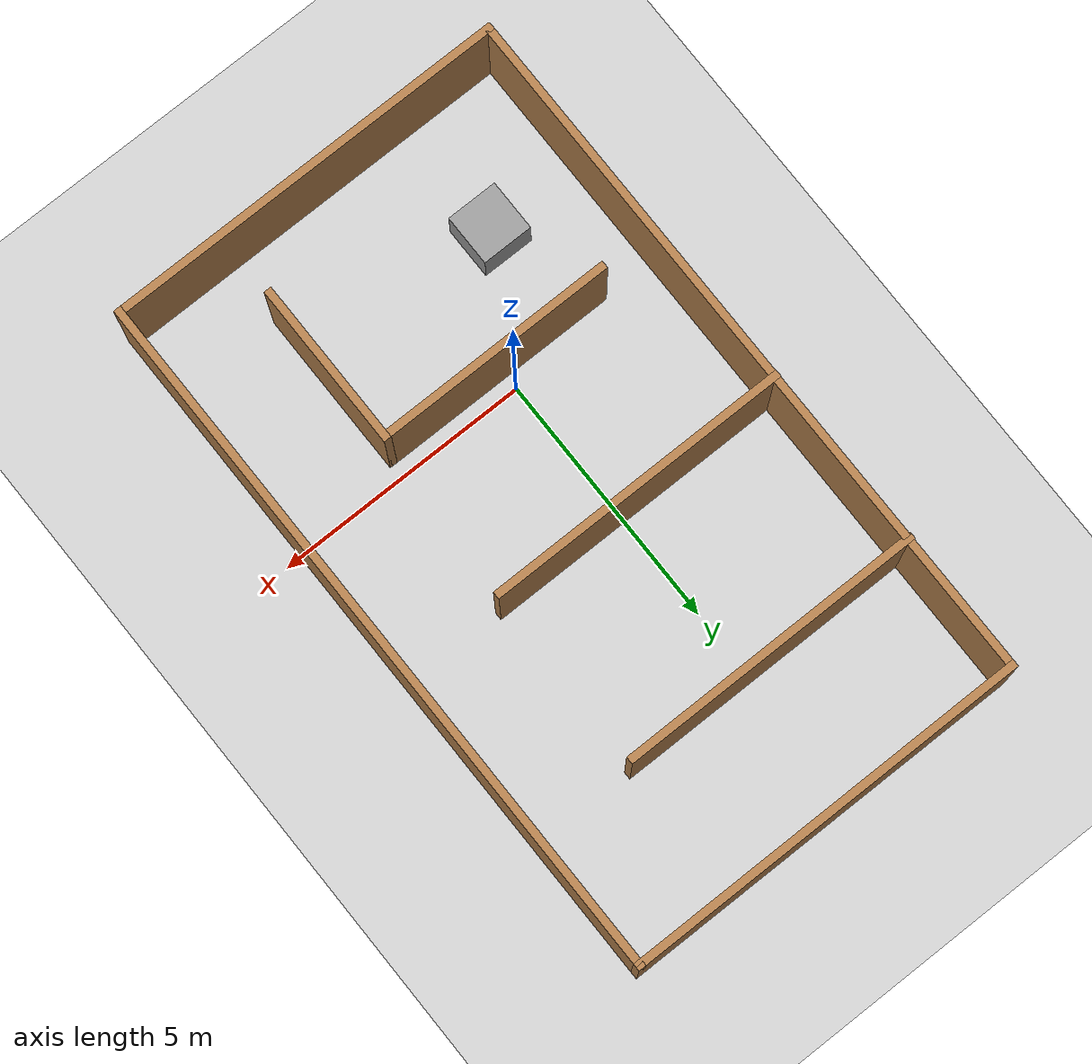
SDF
<sdf version="1.7">
 <world name="default">
  <light name="sun" type="directional">
   <pose>0 0 10 0 -0 0</pose>
   <diffuse>0.8 0.8 0.8 1</diffuse>
   <specular>0.2 0.2 0.2 1</specular>
   <attenuation>
    <range>1000</range>
    <constant>0.9</constant>
    <linear>0.01</linear>
    <quadratic>0.001</quadratic>
   </attenuation>
   <direction>-0.5 0.1 -0.9</direction>
   <spot><inner_angle>0</inner_angle><outer_angle>0</outer_angle><falloff>0</falloff></spot>
  </light>
  <model name="ground_plane">
   <static>1</static>
   <link name="link">
    <collision name="collision">
     <geometry><plane><normal>0 0 1</normal><size>100 100</size></plane></geometry>
     <surface>
      <contact><collide_bitmask>65535</collide_bitmask></contact>
      <friction><ode><mu>100</mu><mu2>50</mu2></ode></friction>
     </surface>
    </collision>
    <visual name="visual">
     <cast_shadows>0</cast_shadows>
     <geometry><plane><normal>0 0 1</normal><size>100 100</size></plane></geometry>
     <material>
      <script><uri>file://media/materials/scripts/gazebo.material</uri><name>Gazebo/Grey</name></script>
     </material>
    </visual>
   </link>
  </model>
  <gravity>0 0 -9.8</gravity>
  <magnetic_field>6e-06 2.3e-05 -4.2e-05</magnetic_field>
  <atmosphere type="adiabatic"/>
  <physics type="ode">
   <max_step_size>0.001</max_step_size>
   <real_time_factor>1</real_time_factor>
   <real_time_update_rate>1000</real_time_update_rate>
  </physics>
  <scene><ambient>0.4 0.4 0.4 1</ambient><background>0.7 0.7 0.7 1</background><shadows>1</shadows></scene>
  <spherical_coordinates>
   <surface_model>EARTH_WGS84</surface_model>
   <latitude_deg>0</latitude_deg>
   <longitude_deg>0</longitude_deg>
   <elevation>0</elevation>
   <heading_deg>0</heading_deg>
  </spherical_coordinates>
  <model name="map1">
   <pose>0.693608 2.165 0 0 -0 0</pose>
   <link name="Wall_0">
    <collision name="Wall_0_Collision">
     <geometry><box><size>8 0.15 2.5</size></box></geometry>
     <pose>0 0 1.25 0 -0 0</pose>
    </collision>
    <visual name="Wall_0_Visual">
     <pose>0 0 1.25 0 -0 0</pose>
     <geometry><box><size>8 0.15 2.5</size></box></geometry>
     <material>
      <script><uri>file://media/materials/scripts/gazebo.material</uri><name>Gazebo/Wood</name></script>
      <ambient>1 1 1 1</ambient>
     </material>
     <meta><layer>0</layer></meta>
    </visual>
    <pose>0.011392 -6.925 0 0 -0 0</pose>
   </link>
   <link name="Wall_1">
    <collision name="Wall_1_Collision">
     <geometry><box><size>14 0.15 2.5</size></box></geometry>
     <pose>0 0 1.25 0 -0 0</pose>
    </collision>
    <visual name="Wall_1_Visual">
     <pose>0 0 1.25 0 -0 0</pose>
     <geometry><box><size>14 0.15 2.5</size></box></geometry>
     <material>
      <script><uri>file://media/materials/scripts/gazebo.material</uri><name>Gazebo/Wood</name></script>
      <ambient>1 1 1 1</ambient>
     </material>
     <meta><layer>0</layer></meta>
    </visual>
    <pose>3.93639 0 0 0 -0 1.5708</pose>
   </link>
   <link name="Wall_10">
    <collision name="Wall_10_Collision">
     <geometry><box><size>4.75 0.15 2.5</size></box></geometry>
     <pose>0 0 1.25 0 -0 0</pose>
    </collision>
    <visual name="Wall_10_Visual">
     <pose>0 0 1.25 0 -0 0</pose>
     <geometry><box><size>4.75 0.15 2.5</size></box></geometry>
     <material>
      <script><uri>file://media/materials/scripts/gazebo.material</uri><name>Gazebo/Wood</name></script>
      <ambient>1 1 1 1</ambient>
     </material>
     <meta><layer>0</layer></meta>
    </visual>
    <pose>-0.525299 -2.51828 0 0 -0 0</pose>
   </link>
   <link name="Wall_11">
    <collision name="Wall_11_Collision">
     <geometry><box><size>3.25 0.15 2.5</size></box></geometry>
     <pose>0 0 1.25 0 -0 0</pose>
    </collision>
    <visual name="Wall_11_Visual">
     <pose>0 0 1.25 0 -0 0</pose>
     <geometry><box><size>3.25 0.15 2.5</size></box></geometry>
     <material>
      <script><uri>file://media/materials/scripts/gazebo.material</uri><name>Gazebo/Wood</name></script>
      <ambient>1 1 1 1</ambient>
     </material>
     <meta><layer>0</layer></meta>
    </visual>
    <pose>1.7747 -4.06828 0 0 -0 -1.5708</pose>
   </link>
   <link name="Wall_3">
    <collision name="Wall_3_Collision">
     <geometry><box><size>14 0.15 2.5</size></box></geometry>
     <pose>0 0 1.25 0 -0 0</pose>
    </collision>
    <visual name="Wall_3_Visual">
     <pose>0 0 1.25 0 -0 0</pose>
     <geometry><box><size>14 0.15 2.5</size></box></geometry>
     <material>
      <script><uri>file://media/materials/scripts/gazebo.material</uri><name>Gazebo/Wood</name></script>
      <ambient>1 1 1 1</ambient>
     </material>
     <meta><layer>0</layer></meta>
    </visual>
    <pose>-3.91361 0 0 0 -0 1.5708</pose>
   </link>
   <link name="Wall_4">
    <collision name="Wall_4_Collision">
     <geometry><box><size>8 0.15 2.5</size></box></geometry>
     <pose>0 0 1.25 0 -0 0</pose>
    </collision>
    <visual name="Wall_4_Visual">
     <pose>0 0 1.25 0 -0 0</pose>
     <geometry><box><size>8 0.15 2.5</size></box></geometry>
     <material>
      <script><uri>file://media/materials/scripts/gazebo.material</uri><name>Gazebo/Wood</name></script>
      <ambient>1 1 1 1</ambient>
     </material>
     <meta><layer>0</layer></meta>
    </visual>
    <pose>0.011392 6.925 0 0 -0 0</pose>
   </link>
   <link name="Wall_6">
    <collision name="Wall_6_Collision">
     <geometry><box><size>6 0.15 2.5</size></box></geometry>
     <pose>0 0 1.25 0 -0 0</pose>
    </collision>
    <visual name="Wall_6_Visual">
     <pose>0 0 1.25 0 -0 0</pose>
     <geometry><box><size>6 0.15 2.5</size></box></geometry>
     <material>
      <script><uri>file://media/materials/scripts/gazebo.material</uri><name>Gazebo/Wood</name></script>
      <ambient>1 1 1 1</ambient>
     </material>
     <meta><layer>0</layer></meta>
    </visual>
    <pose>-1.01139 4.22694 0 0 -0 0</pose>
   </link>
   <link name="Wall_8">
    <collision name="Wall_8_Collision">
     <geometry><box><size>6 0.15 2.5</size></box></geometry>
     <pose>0 0 1.25 0 -0 0</pose>
    </collision>
    <visual name="Wall_8_Visual">
     <pose>0 0 1.25 0 -0 0</pose>
     <geometry><box><size>6 0.15 2.5</size></box></geometry>
     <material>
      <script><uri>file://media/materials/scripts/gazebo.material</uri><name>Gazebo/Wood</name></script>
      <ambient>1 1 1 1</ambient>
     </material>
     <meta><layer>0</layer></meta>
    </visual>
    <pose>-0.999949 0.727935 0 0 -0 0</pose>
   </link>
   <static>1</static>
  </model>
  <model name="unit_box">
   <pose>-1.33967 -2.40392 0.5 -0 -0 -0</pose>
   <link name="link">
    <inertial>
     <mass>1</mass>
     <inertia>
      <ixx>0.166667</ixx>
      <ixy>0</ixy>
      <ixz>0</ixz>
      <iyy>0.166667</iyy>
      <iyz>0</iyz>
      <izz>0.166667</izz>
     </inertia>
    </inertial>
    <collision name="collision"><geometry><box><size>1 1 1</size></box></geometry></collision>
    <visual name="visual">
     <geometry><box><size>1 1 1</size></box></geometry>
     <material>
      <script><name>Gazebo/Grey</name><uri>file://media/materials/scripts/gazebo.material</uri></script>
     </material>
    </visual>
   </link>
  </model>
 </world>
</sdf>
